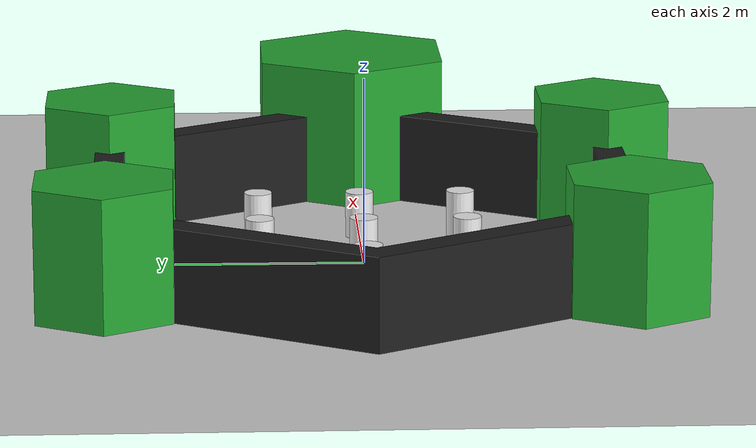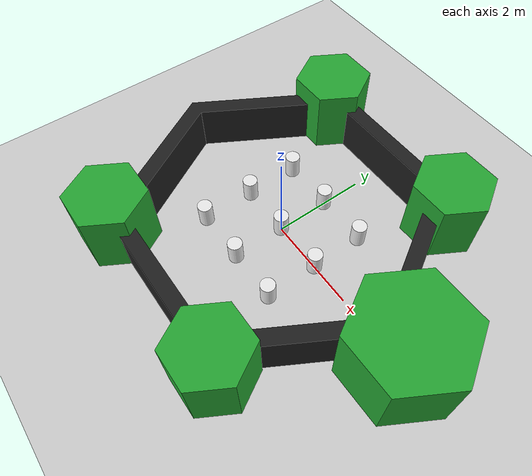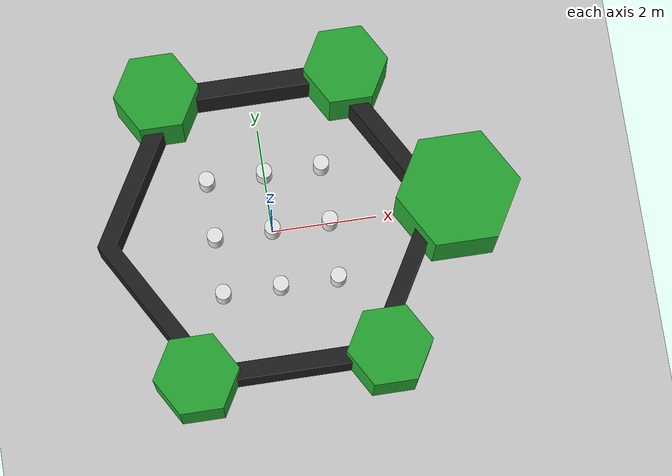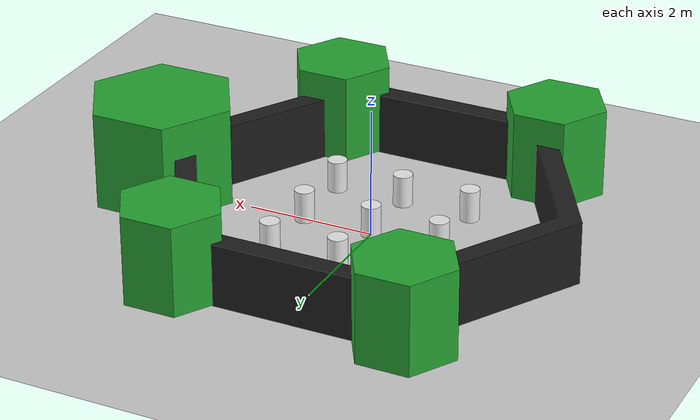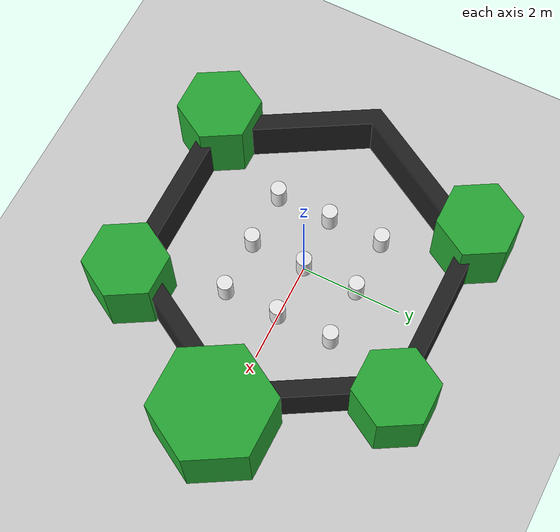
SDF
<sdf version="1.6">
 <world name="default">
  <include><uri>model://ground_plane</uri></include>
  <include><uri>model://sun</uri></include>
  <scene><shadows>false</shadows></scene>
  <physics type="ode">
   <real_time_update_rate>1000.0</real_time_update_rate>
   <max_step_size>0.001</max_step_size>
   <real_time_factor>1</real_time_factor>
   <ode>
    <solver>
     <type>quick</type>
     <iters>150</iters>
     <precon_iters>0</precon_iters>
     <sor>1.400000</sor>
     <use_dynamic_moi_rescaling>1</use_dynamic_moi_rescaling>
    </solver>
    <constraints>
     <cfm>0.00001</cfm>
     <erp>0.2</erp>
     <contact_max_correcting_vel>2000.000000</contact_max_correcting_vel>
     <contact_surface_layer>0.01000</contact_surface_layer>
    </constraints>
   </ode>
  </physics>
  <model name="turtlebot3_world">
   <static>1</static>
   <include><uri>model://turtlebot3_world</uri></include>
  </model>
 </world>
</sdf>

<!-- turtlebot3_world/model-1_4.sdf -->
<sdf version='1.4'>
    <!-- Draw Circle -->
    <model name='ros_symbol'>
      <static>1</static>
      <link name='symbol'>
        <collision name='one_one'>
          <pose>-1.1 -1.1 0.25 0 0 0</pose>
          <geometry>
            <cylinder>
              <radius>0.15</radius>
              <length>0.5</length>
            </cylinder>
          </geometry>
          <max_contacts>10</max_contacts>
          <surface>
            <bounce/>
            <friction>
              <ode/>
            </friction>
            <contact>
              <ode/>
            </contact>
          </surface>
        </collision>

        <visual name='one_one'>
          <pose>-1.1 -1.1 0.25 0 0 0</pose>
          <geometry>
            <cylinder>
              <radius>0.15</radius>
              <length>0.5</length>
            </cylinder>
          </geometry>
          <material>
            <script>
              <uri>file://media/materials/scripts/gazebo.material</uri>
              <name>Gazebo/White</name>
            </script>
          </material>
        </visual>

        <collision name='one_two'>
          <pose>-1.1 0 0.25 0 0 0</pose>
          <geometry>
            <cylinder>
              <radius>0.15</radius>
              <length>0.5</length>
            </cylinder>
          </geometry>
          <max_contacts>10</max_contacts>
          <surface>
            <bounce/>
            <friction>
              <ode/>
            </friction>
            <contact>
              <ode/>
            </contact>
          </surface>
        </collision>

        <visual name='one_two'>
          <pose>-1.1 0 0.25 0 0 0</pose>
          <geometry>
            <cylinder>
              <radius>0.15</radius>
              <length>0.5</length>
            </cylinder>
          </geometry>
          <material>
            <script>
              <uri>file://media/materials/scripts/gazebo.material</uri>
              <name>Gazebo/White</name>
            </script>
          </material>
        </visual>

        <collision name='one_three'>
          <pose>-1.1 1.1 0.25 0 0 0</pose>
          <geometry>
            <cylinder>
              <radius>0.15</radius>
              <length>0.5</length>
            </cylinder>
          </geometry>
          <max_contacts>10</max_contacts>
          <surface>
            <bounce/>
            <friction>
              <ode/>
            </friction>
            <contact>
              <ode/>
            </contact>
          </surface>
        </collision>

        <visual name='one_three'>
          <pose>-1.1 1.1 0.25 0 0 0</pose>
          <geometry>
            <cylinder>
              <radius>0.15</radius>
              <length>0.5</length>
            </cylinder>
          </geometry>
          <material>
            <script>
              <uri>file://media/materials/scripts/gazebo.material</uri>
              <name>Gazebo/White</name>
            </script>
          </material>
        </visual>

        <collision name='two_one'>
          <pose>0 -1.1 0.25 0 0 0</pose>
          <geometry>
            <cylinder>
              <radius>0.15</radius>
              <length>0.5</length>
            </cylinder>
          </geometry>
          <max_contacts>10</max_contacts>
          <surface>
            <bounce/>
            <friction>
              <ode/>
            </friction>
            <contact>
              <ode/>
            </contact>
          </surface>
        </collision>

        <visual name='two_one'>
          <pose>0 -1.1 0.25 0 0 0</pose>
          <geometry>
            <cylinder>
              <radius>0.15</radius>
              <length>0.5</length>
            </cylinder>
          </geometry>
          <material>
            <script>
              <uri>file://media/materials/scripts/gazebo.material</uri>
              <name>Gazebo/White</name>
            </script>
          </material>
        </visual>

        <collision name='two_two'>
          <pose>0 0 0.25 0 0 0</pose>
          <geometry>
            <cylinder>
              <radius>0.15</radius>
              <length>0.5</length>
            </cylinder>
          </geometry>
          <max_contacts>10</max_contacts>
          <surface>
            <bounce/>
            <friction>
              <ode/>
            </friction>
            <contact>
              <ode/>
            </contact>
          </surface>
        </collision>

        <visual name='two_two'>
          <pose>0 0 0.25 0 0 0</pose>
          <geometry>
            <cylinder>
              <radius>0.15</radius>
              <length>0.5</length>
            </cylinder>
          </geometry>
          <material>
            <script>
              <uri>file://media/materials/scripts/gazebo.material</uri>
              <name>Gazebo/White</name>
            </script>
          </material>
        </visual>

        <collision name='two_three'>
          <pose>0 1.1 0.25 0 0 0</pose>
          <geometry>
            <cylinder>
              <radius>0.15</radius>
              <length>0.5</length>
            </cylinder>
          </geometry>
          <max_contacts>10</max_contacts>
          <surface>
            <bounce/>
            <friction>
              <ode/>
            </friction>
            <contact>
              <ode/>
            </contact>
          </surface>
        </collision>

        <visual name='two_three'>
          <pose>0 1.1 0.25 0 0 0</pose>
          <geometry>
            <cylinder>
              <radius>0.15</radius>
              <length>0.5</length>
            </cylinder>
          </geometry>
          <material>
            <script>
              <uri>file://media/materials/scripts/gazebo.material</uri>
              <name>Gazebo/White</name>
            </script>
          </material>
        </visual>

        <collision name='three_one'>
          <pose>1.1 -1.1 0.25 0 0 0</pose>
          <geometry>
            <cylinder>
              <radius>0.15</radius>
              <length>0.5</length>
            </cylinder>
          </geometry>
          <max_contacts>10</max_contacts>
          <surface>
            <bounce/>
            <friction>
              <ode/>
            </friction>
            <contact>
              <ode/>
            </contact>
          </surface>
        </collision>

        <visual name='three_one'>
          <pose>1.1 -1.1 0.25 0 0 0</pose>
          <geometry>
            <cylinder>
              <radius>0.15</radius>
              <length>0.5</length>
            </cylinder>
          </geometry>
          <material>
            <script>
              <uri>file://media/materials/scripts/gazebo.material</uri>
              <name>Gazebo/White</name>
            </script>
          </material>
        </visual>

        <collision name='three_two'>
          <pose>1.1 0 0.25 0 0 0</pose>
          <geometry>
            <cylinder>
              <radius>0.15</radius>
              <length>0.5</length>
            </cylinder>
          </geometry>
          <max_contacts>10</max_contacts>
          <surface>
            <bounce/>
            <friction>
              <ode/>
            </friction>
            <contact>
              <ode/>
            </contact>
          </surface>
        </collision>

        <visual name='three_two'>
          <pose>1.1 0 0.25 0 0 0</pose>
          <geometry>
            <cylinder>
              <radius>0.15</radius>
              <length>0.5</length>
            </cylinder>
          </geometry>
          <material>
            <script>
              <uri>file://media/materials/scripts/gazebo.material</uri>
              <name>Gazebo/White</name>
            </script>
          </material>
        </visual>

        <collision name='three_three'>
          <pose>1.1 1.1 0.25 0 0 0</pose>
          <geometry>
            <cylinder>
              <radius>0.15</radius>
              <length>0.5</length>
            </cylinder>
          </geometry>
          <max_contacts>10</max_contacts>
          <surface>
            <bounce/>
            <friction>
              <ode/>
            </friction>
            <contact>
              <ode/>
            </contact>
          </surface>
        </collision>

        <visual name='three_three'>
          <pose>1.1 1.1 0.25 0 0 0</pose>
          <geometry>
            <cylinder>
              <radius>0.15</radius>
              <length>0.5</length>
            </cylinder>
          </geometry>
          <material>
            <script>
              <uri>file://media/materials/scripts/gazebo.material</uri>
              <name>Gazebo/White</name>
            </script>
          </material>
        </visual>

        <!-- Draw Hexagon -->
        <collision name='head'>
          <pose>3.5 0 -0.5 0 0 0</pose>
          <geometry>
            <mesh>
              <uri>model://turtlebot3_world/meshes/hexagon.dae</uri>
              <scale>0.8 0.8 0.8</scale>
            </mesh>
          </geometry>
          <max_contacts>10</max_contacts>
          <surface>
            <bounce/>
            <friction>
              <ode/>
            </friction>
            <contact>
              <ode/>
            </contact>
          </surface>
        </collision>

        <visual name='head'>
          <pose>3.5 0 -0.5 0 0 0</pose>
          <geometry>
            <mesh>
              <uri>model://turtlebot3_world/meshes/hexagon.dae</uri>
              <scale>0.8 0.8 0.8</scale>
            </mesh>
          </geometry>
          <material>
            <script>
              <uri>file://media/materials/scripts/gazebo.material</uri>
              <name>Gazebo/Green</name>
            </script>
          </material>
        </visual>

        <collision name='left_hand'>
          <pose>1.8 2.7 0 0 0 0</pose>
          <geometry>
            <mesh>
              <uri>model://turtlebot3_world/meshes/hexagon.dae</uri>
              <scale>0.55 0.55 0.55</scale>
            </mesh>
          </geometry>
          <max_contacts>10</max_contacts>
          <surface>
            <bounce/>
            <friction>
              <ode/>
            </friction>
            <contact>
              <ode/>
            </contact>
          </surface>
        </collision>

        <visual name='left_hand'>
          <pose>1.8 2.7 0 0 0 0</pose>
          <geometry>
            <mesh>
              <uri>model://turtlebot3_world/meshes/hexagon.dae</uri>
              <scale>0.55 0.55 0.55</scale>
            </mesh>
          </geometry>
          <material>
            <script>
              <uri>file://media/materials/scripts/gazebo.material</uri>
              <name>Gazebo/Green</name>
            </script>
          </material>
        </visual>

        <collision name='right_hand'>
          <pose>1.8 -2.7 0 0 0 0</pose>
          <geometry>
            <mesh>
              <uri>model://turtlebot3_world/meshes/hexagon.dae</uri>
              <scale>0.55 0.55 0.55</scale>
            </mesh>
          </geometry>
          <max_contacts>10</max_contacts>
          <surface>
            <bounce/>
            <friction>
              <ode/>
            </friction>
            <contact>
              <ode/>
            </contact>
          </surface>
        </collision>

        <visual name='right_hand'>
          <pose>1.8 -2.7 0 0 0 0</pose>
          <geometry>
            <mesh>
              <uri>model://turtlebot3_world/meshes/hexagon.dae</uri>
              <scale>0.55 0.55 0.55</scale>
            </mesh>
          </geometry>
          <material>
            <script>
              <uri>file://media/materials/scripts/gazebo.material</uri>
              <name>Gazebo/Green</name>
            </script>
          </material>
        </visual>

        <collision name='left_foot'>
          <pose>-1.8 2.7 0 0 0 0</pose>
          <geometry>
            <mesh>
              <uri>model://turtlebot3_world/meshes/hexagon.dae</uri>
              <scale>0.55 0.55 0.55</scale>
            </mesh>
          </geometry>
          <max_contacts>10</max_contacts>
          <surface>
            <bounce/>
            <friction>
              <ode/>
            </friction>
            <contact>
              <ode/>
            </contact>
          </surface>
        </collision>

        <visual name='left_foot'>
          <pose>-1.8 2.7 0 0 0 0</pose>
          <geometry>
            <mesh>
              <uri>model://turtlebot3_world/meshes/hexagon.dae</uri>
              <scale>0.55 0.55 0.55</scale>
            </mesh>
          </geometry>
          <material>
            <script>
              <uri>file://media/materials/scripts/gazebo.material</uri>
              <name>Gazebo/Green</name>
            </script>
          </material>
        </visual>

        <collision name='right_foot'>
          <pose>-1.8 -2.7 0 0 0 0</pose>
          <geometry>
            <mesh>
              <uri>model://turtlebot3_world/meshes/hexagon.dae</uri>
              <scale>0.55 0.55 0.55</scale>
            </mesh>
          </geometry>
          <max_contacts>10</max_contacts>
          <surface>
            <bounce/>
            <friction>
              <ode/>
            </friction>
            <contact>
              <ode/>
            </contact>
          </surface>
        </collision>

        <visual name='right_foot'>
          <pose>-1.8 -2.7 0 0 0 0</pose>
          <geometry>
            <mesh>
              <uri>model://turtlebot3_world/meshes/hexagon.dae</uri>
              <scale>0.55 0.55 0.55</scale>
            </mesh>
          </geometry>
          <material>
            <script>
              <uri>file://media/materials/scripts/gazebo.material</uri>
              <name>Gazebo/Green</name>
            </script>
          </material>
        </visual>

        <!-- Draw Wall -->
        <collision name='body'>
        <pose>0 0 -0.3 0 0 -1.5708</pose>
        <geometry>
          <mesh>
            <uri>model://turtlebot3_world/meshes/wall.dae</uri>
            <scale>0.25 0.25 0.25</scale>
          </mesh>
        </geometry>
        <max_contacts>10</max_contacts>
        <surface>
          <bounce/>
          <friction>
            <ode/>
          </friction>
          <contact>
            <ode/>
          </contact>
        </surface>
      </collision>

      <visual name='body'>
        <pose>0 0 -0.3 0 0 -1.5708</pose>
        <geometry>
          <mesh>
            <uri>model://turtlebot3_world/meshes/wall.dae</uri>
            <scale>0.25 0.25 0.25</scale>
          </mesh>
        </geometry>
        <material>
          <script>
            <uri>file://media/materials/scripts/gazebo.material</uri>
            <name>Gazebo/FlatBlack</name>
          </script>
        </material>
      </visual>
    </link>
  </model>
</sdf>
